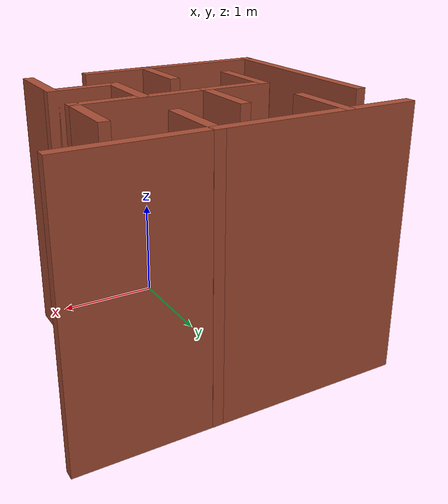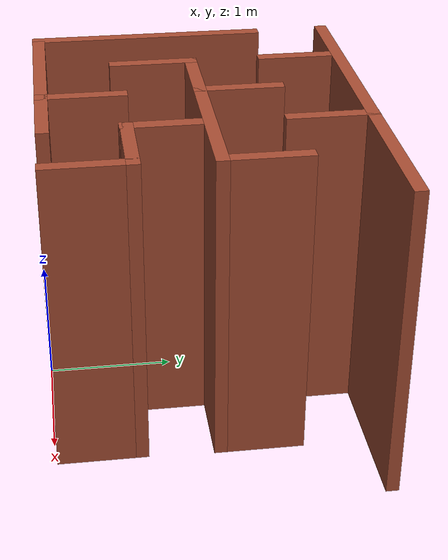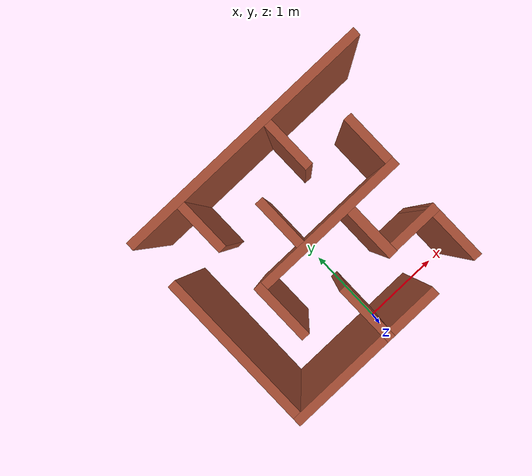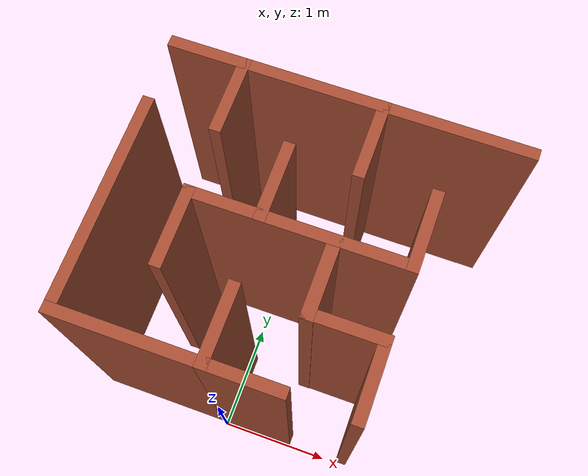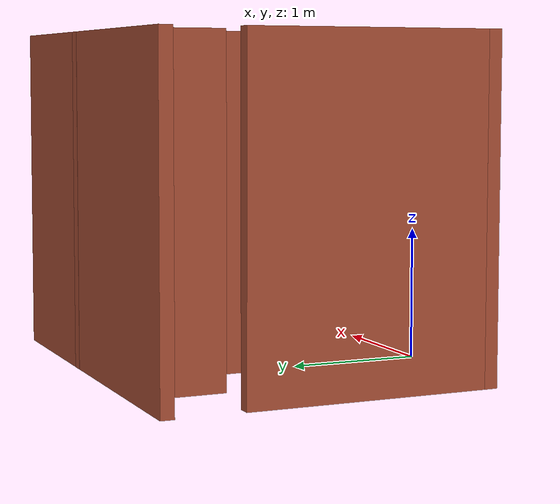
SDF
<?xml version='1.0'?>
<sdf version='1.7'>
  <model name='Maze02'>
    <pose>0.299704 1.25927 0 0 -0 0</pose>
    <link name='Wall_13'>
      <collision name='Wall_13_Collision'>
        <geometry>
          <box>
            <size>0.7 0.1 2.5</size>
          </box>
        </geometry>
        <pose>0 0 1.25 0 -0 0</pose>
      </collision>
      <visual name='Wall_13_Visual'>
        <pose>0 0 1.25 0 -0 0</pose>
        <geometry>
          <box>
            <size>0.7 0.1 2.5</size>
          </box>
        </geometry>
        <material>
          <script>
            <uri>file://media/materials/scripts/gazebo.material</uri>
            <name>Gazebo/Bricks</name>
          </script>
          <ambient>1 1 1 1</ambient>
        </material>
        <meta>
          <layer>0</layer>
        </meta>
      </visual>
      <pose>-0.299704 -0.889247 0 0 -0 1.5708</pose>
    </link>
    <link name='Wall_17'>
      <collision name='Wall_17_Collision'>
        <geometry>
          <box>
            <size>0.7 0.1 2.5</size>
          </box>
        </geometry>
        <pose>0 0 1.25 0 -0 0</pose>
      </collision>
      <visual name='Wall_17_Visual'>
        <pose>0 0 1.25 0 -0 0</pose>
        <geometry>
          <box>
            <size>0.7 0.1 2.5</size>
          </box>
        </geometry>
        <material>
          <script>
            <uri>file://media/materials/scripts/gazebo.material</uri>
            <name>Gazebo/Bricks</name>
          </script>
          <ambient>1 1 1 1</ambient>
        </material>
        <meta>
          <layer>0</layer>
        </meta>
      </visual>
      <pose>0.000296 -1.18925 0 0 -0 0</pose>
    </link>
    <link name='Wall_19'>
      <collision name='Wall_19_Collision'>
        <geometry>
          <box>
            <size>1.3 0.1 2.5</size>
          </box>
        </geometry>
        <pose>0 0 1.25 0 -0 0</pose>
      </collision>
      <visual name='Wall_19_Visual'>
        <pose>0 0 1.25 0 -0 0</pose>
        <geometry>
          <box>
            <size>1.3 0.1 2.5</size>
          </box>
        </geometry>
        <material>
          <script>
            <uri>file://media/materials/scripts/gazebo.material</uri>
            <name>Gazebo/Bricks</name>
          </script>
          <ambient>1 1 1 1</ambient>
        </material>
        <meta>
          <layer>0</layer>
        </meta>
      </visual>
      <pose>-0.899704 -1.18926 0 0 -0 -3.14157</pose>
    </link>
    <link name='Wall_21'>
      <collision name='Wall_21_Collision'>
        <geometry>
          <box>
            <size>1.9 0.1 2.5</size>
          </box>
        </geometry>
        <pose>0 0 1.25 0 -0 0</pose>
      </collision>
      <visual name='Wall_21_Visual'>
        <pose>0 0 1.25 0 -0 0</pose>
        <geometry>
          <box>
            <size>1.9 0.1 2.5</size>
          </box>
        </geometry>
        <material>
          <script>
            <uri>file://media/materials/scripts/gazebo.material</uri>
            <name>Gazebo/Bricks</name>
          </script>
          <ambient>1 1 1 1</ambient>
        </material>
        <meta>
          <layer>0</layer>
        </meta>
      </visual>
      <pose>-1.4997 -0.289272 0 0 -0 1.5708</pose>
    </link>
    <link name='Wall_29'>
      <collision name='Wall_29_Collision'>
        <geometry>
          <box>
            <size>0.7 0.1 2.5</size>
          </box>
        </geometry>
        <pose>0 0 1.25 0 -0 0</pose>
      </collision>
      <visual name='Wall_29_Visual'>
        <pose>0 0 1.25 0 -0 0</pose>
        <geometry>
          <box>
            <size>0.7 0.1 2.5</size>
          </box>
        </geometry>
        <material>
          <script>
            <uri>file://media/materials/scripts/gazebo.material</uri>
            <name>Gazebo/Bricks</name>
          </script>
          <ambient>1 1 1 1</ambient>
        </material>
        <meta>
          <layer>0</layer>
        </meta>
      </visual>
      <pose>-0.900357 -0.289307 0 0 -0 1.5708</pose>
    </link>
    <link name='Wall_31'>
      <collision name='Wall_31_Collision'>
        <geometry>
          <box>
            <size>1.9 0.1 2.5</size>
          </box>
        </geometry>
        <pose>0 0 1.25 0 -0 0</pose>
      </collision>
      <visual name='Wall_31_Visual'>
        <pose>0 0 1.25 0 -0 0</pose>
        <geometry>
          <box>
            <size>1.9 0.1 2.5</size>
          </box>
        </geometry>
        <material>
          <script>
            <uri>file://media/materials/scripts/gazebo.material</uri>
            <name>Gazebo/Bricks</name>
          </script>
          <ambient>1 1 1 1</ambient>
        </material>
        <meta>
          <layer>0</layer>
        </meta>
      </visual>
      <pose>-0.000531 0.010711 0 0 -0 1.9e-05</pose>
    </link>
    <link name='Wall_37'>
      <collision name='Wall_37_Collision'>
        <geometry>
          <box>
            <size>0.704946 0.11 2.5</size>
          </box>
        </geometry>
        <pose>0 0 1.25 0 -0 0</pose>
      </collision>
      <visual name='Wall_37_Visual'>
        <pose>0 0 1.25 0 -0 0</pose>
        <geometry>
          <box>
            <size>0.704946 0.11 2.5</size>
          </box>
        </geometry>
        <material>
          <script>
            <uri>file://media/materials/scripts/gazebo.material</uri>
            <name>Gazebo/Bricks</name>
          </script>
          <ambient>1 1 1 1</ambient>
        </material>
        <meta>
          <layer>0</layer>
        </meta>
      </visual>
      <pose>0.287296 -0.293799 0 0 -0 -1.5708</pose>
    </link>
    <link name='Wall_38'>
      <collision name='Wall_38_Collision'>
        <geometry>
          <box>
            <size>0.690088 0.1 2.5</size>
          </box>
        </geometry>
        <pose>0 0 1.25 0 -0 0</pose>
      </collision>
      <visual name='Wall_38_Visual'>
        <pose>0 0 1.25 0 -0 0</pose>
        <geometry>
          <box>
            <size>0.690088 0.1 2.5</size>
          </box>
        </geometry>
        <material>
          <script>
            <uri>file://media/materials/scripts/gazebo.material</uri>
            <name>Gazebo/Bricks</name>
          </script>
          <ambient>1 1 1 1</ambient>
        </material>
        <meta>
          <layer>0</layer>
        </meta>
      </visual>
      <pose>0.582296 -0.591272 0 0 -0 0</pose>
    </link>
    <link name='Wall_41'>
      <collision name='Wall_41_Collision'>
        <geometry>
          <box>
            <size>0.7 0.1 2.5</size>
          </box>
        </geometry>
        <pose>0 0 1.25 0 -0 0</pose>
      </collision>
      <visual name='Wall_41_Visual'>
        <pose>0 0 1.25 0 -0 0</pose>
        <geometry>
          <box>
            <size>0.7 0.1 2.5</size>
          </box>
        </geometry>
        <material>
          <script>
            <uri>file://media/materials/scripts/gazebo.material</uri>
            <name>Gazebo/Bricks</name>
          </script>
          <ambient>1 1 1 1</ambient>
        </material>
        <meta>
          <layer>0</layer>
        </meta>
      </visual>
      <pose>-0.309093 0.310728 0 0 -0 1.5708</pose>
    </link>
    <link name='Wall_43'>
      <collision name='Wall_43_Collision'>
        <geometry>
          <box>
            <size>0.7 0.1 2.5</size>
          </box>
        </geometry>
        <pose>0 0 1.25 0 -0 0</pose>
      </collision>
      <visual name='Wall_43_Visual'>
        <pose>0 0 1.25 0 -0 0</pose>
        <geometry>
          <box>
            <size>0.7 0.1 2.5</size>
          </box>
        </geometry>
        <material>
          <script>
            <uri>file://media/materials/scripts/gazebo.material</uri>
            <name>Gazebo/Bricks</name>
          </script>
          <ambient>1 1 1 1</ambient>
        </material>
        <meta>
          <layer>0</layer>
        </meta>
      </visual>
      <pose>0.877296 -0.891272 0 0 -0 -1.5708</pose>
    </link>
    <link name='Wall_45'>
      <collision name='Wall_45_Collision'>
        <geometry>
          <box>
            <size>0.699965 0.1 2.5</size>
          </box>
        </geometry>
        <pose>0 0 1.25 0 -0 0</pose>
      </collision>
      <visual name='Wall_45_Visual'>
        <pose>0 0 1.25 0 -0 0</pose>
        <geometry>
          <box>
            <size>0.699965 0.1 2.5</size>
          </box>
        </geometry>
        <material>
          <script>
            <uri>file://media/materials/scripts/gazebo.material</uri>
            <name>Gazebo/Bricks</name>
          </script>
          <ambient>1 1 1 1</ambient>
        </material>
        <meta>
          <layer>0</layer>
        </meta>
      </visual>
      <pose>0.899296 0.310728 0 0 -0 1.5708</pose>
    </link>
    <link name='Wall_47'>
      <collision name='Wall_47_Collision'>
        <geometry>
          <box>
            <size>3.1 0.1 2.5</size>
          </box>
        </geometry>
        <pose>0 0 1.25 0 -0 0</pose>
      </collision>
      <visual name='Wall_47_Visual'>
        <pose>0 0 1.25 0 -0 0</pose>
        <geometry>
          <box>
            <size>3.1 0.1 2.5</size>
          </box>
        </geometry>
        <material>
          <script>
            <uri>file://media/materials/scripts/gazebo.material</uri>
            <name>Gazebo/Bricks</name>
          </script>
          <ambient>1 1 1 1</ambient>
        </material>
        <meta>
          <layer>0</layer>
        </meta>
      </visual>
      <pose>-0 1.20812 0 0 -0 0</pose>
    </link>
    <link name='Wall_49'>
      <collision name='Wall_49_Collision'>
        <geometry>
          <box>
            <size>0.7 0.1 2.5</size>
          </box>
        </geometry>
        <pose>0 0 1.25 0 -0 0</pose>
      </collision>
      <visual name='Wall_49_Visual'>
        <pose>0 0 1.25 0 -0 0</pose>
        <geometry>
          <box>
            <size>0.7 0.1 2.5</size>
          </box>
        </geometry>
        <material>
          <script>
            <uri>file://media/materials/scripts/gazebo.material</uri>
            <name>Gazebo/Bricks</name>
          </script>
          <ambient>1 1 1 1</ambient>
        </material>
        <meta>
          <layer>0</layer>
        </meta>
      </visual>
      <pose>-0.900425 0.907191 0 0 -0 -1.5708</pose>
    </link>
    <link name='Wall_51'>
      <collision name='Wall_51_Collision'>
        <geometry>
          <box>
            <size>0.7 0.1 2.5</size>
          </box>
        </geometry>
        <pose>0 0 1.25 0 -0 0</pose>
      </collision>
      <visual name='Wall_51_Visual'>
        <pose>0 0 1.25 0 -0 0</pose>
        <geometry>
          <box>
            <size>0.7 0.1 2.5</size>
          </box>
        </geometry>
        <material>
          <script>
            <uri>file://media/materials/scripts/gazebo.material</uri>
            <name>Gazebo/Bricks</name>
          </script>
          <ambient>1 1 1 1</ambient>
        </material>
        <meta>
          <layer>0</layer>
        </meta>
      </visual>
      <pose>0.284019 0.909272 0 0 -0 -1.5708</pose>
    </link>
    <static>1</static>
  </model>
</sdf>
